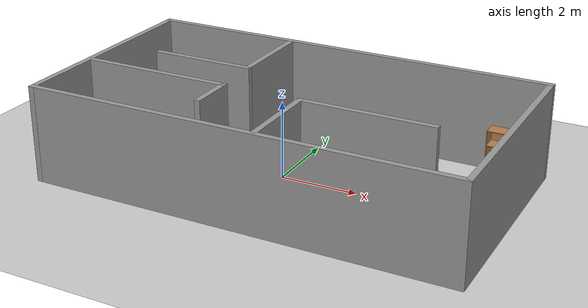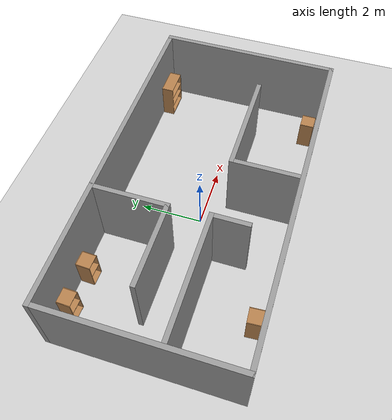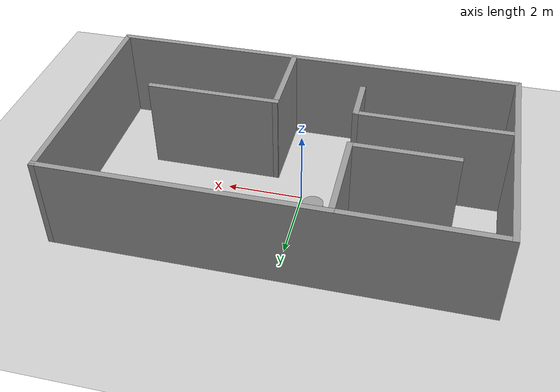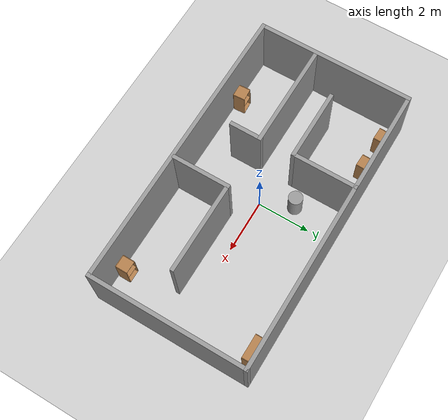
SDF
<sdf version="1.7">
 <world name="default">
  <light name="sun" type="directional">
   <pose>0 0 10 0 -0 0</pose>
   <diffuse>0.8 0.8 0.8 1</diffuse>
   <specular>0.2 0.2 0.2 1</specular>
   <attenuation>
    <range>1000</range>
    <constant>0.9</constant>
    <linear>0.01</linear>
    <quadratic>0.001</quadratic>
   </attenuation>
   <direction>-0.5 0.1 -0.9</direction>
   <spot><inner_angle>0</inner_angle><outer_angle>0</outer_angle><falloff>0</falloff></spot>
  </light>
  <model name="ground_plane">
   <static>1</static>
   <link name="link">
    <collision name="collision">
     <geometry><plane><normal>0 0 1</normal><size>100 100</size></plane></geometry>
     <surface>
      <contact><collide_bitmask>65535</collide_bitmask></contact>
      <friction><ode><mu>100</mu><mu2>50</mu2></ode></friction>
     </surface>
    </collision>
    <visual name="visual">
     <cast_shadows>0</cast_shadows>
     <geometry><plane><normal>0 0 1</normal><size>100 100</size></plane></geometry>
     <material>
      <script><uri>file://media/materials/scripts/gazebo.material</uri><name>Gazebo/Grey</name></script>
     </material>
    </visual>
   </link>
  </model>
  <gravity>0 0 -9.8</gravity>
  <magnetic_field>6e-06 2.3e-05 -4.2e-05</magnetic_field>
  <atmosphere type="adiabatic"/>
  <physics type="ode">
   <max_step_size>0.001</max_step_size>
   <real_time_factor>1</real_time_factor>
   <real_time_update_rate>1000</real_time_update_rate>
  </physics>
  <scene><ambient>0.4 0.4 0.4 1</ambient><background>0.7 0.7 0.7 1</background><shadows>1</shadows></scene>
  <spherical_coordinates>
   <surface_model>EARTH_WGS84</surface_model>
   <latitude_deg>0</latitude_deg>
   <longitude_deg>0</longitude_deg>
   <elevation>0</elevation>
   <heading_deg>0</heading_deg>
  </spherical_coordinates>
  <model name="sudo_room">
   <pose>0.281156 0.007243 0 0 -0 0</pose>
   <link name="Wall_21">
    <collision name="Wall_21_Collision">
     <geometry><box><size>6 0.15 2.5</size></box></geometry>
     <pose>0 0 1.25 0 -0 0</pose>
    </collision>
    <visual name="Wall_21_Visual">
     <pose>0 0 1.25 0 -0 0</pose>
     <geometry><box><size>6 0.15 2.5</size></box></geometry>
     <material>
      <script><uri>file://media/materials/scripts/gazebo.material</uri><name>Gazebo/Grey</name></script>
      <ambient>1 1 1 1</ambient>
     </material>
     <meta><layer>0</layer></meta>
    </visual>
    <pose>5.455 0 0 0 -0 1.5708</pose>
   </link>
   <link name="Wall_22">
    <collision name="Wall_22_Collision">
     <geometry><box><size>11.06 0.15 2.5</size></box></geometry>
     <pose>0 0 1.25 0 -0 0</pose>
    </collision>
    <visual name="Wall_22_Visual">
     <pose>0 0 1.25 0 -0 0</pose>
     <geometry><box><size>11.06 0.15 2.5</size></box></geometry>
     <material>
      <script><uri>file://media/materials/scripts/gazebo.material</uri><name>Gazebo/Grey</name></script>
      <ambient>1 1 1 1</ambient>
     </material>
     <meta><layer>0</layer></meta>
    </visual>
    <pose>0 2.925 0 0 -0 3.14159</pose>
   </link>
   <link name="Wall_23">
    <collision name="Wall_23_Collision">
     <geometry><box><size>6 0.15 2.5</size></box></geometry>
     <pose>0 0 1.25 0 -0 0</pose>
    </collision>
    <visual name="Wall_23_Visual">
     <pose>0 0 1.25 0 -0 0</pose>
     <geometry><box><size>6 0.15 2.5</size></box></geometry>
     <material>
      <script><uri>file://media/materials/scripts/gazebo.material</uri><name>Gazebo/Grey</name></script>
      <ambient>1 1 1 1</ambient>
     </material>
     <meta><layer>0</layer></meta>
    </visual>
    <pose>-5.455 0 0 0 -0 -1.5708</pose>
   </link>
   <link name="Wall_25">
    <collision name="Wall_25_Collision">
     <geometry><box><size>2.5 0.15 2.5</size></box></geometry>
     <pose>0 0 1.25 0 -0 0</pose>
    </collision>
    <visual name="Wall_25_Visual">
     <pose>0 0 1.25 0 -0 0</pose>
     <geometry><box><size>2.5 0.15 2.5</size></box></geometry>
     <material>
      <script><uri>file://media/materials/scripts/gazebo.material</uri><name>Gazebo/Grey</name></script>
      <ambient>1 1 1 1</ambient>
     </material>
     <meta><layer>0</layer></meta>
    </visual>
    <pose>-1.56393 1.73565 0 0 -0 -1.5708</pose>
   </link>
   <link name="Wall_26">
    <collision name="Wall_26_Collision">
     <geometry><box><size>2.75 0.15 2.5</size></box></geometry>
     <pose>0 0 1.25 0 -0 0</pose>
    </collision>
    <visual name="Wall_26_Visual">
     <pose>0 0 1.25 0 -0 0</pose>
     <geometry><box><size>2.75 0.15 2.5</size></box></geometry>
     <material>
      <script><uri>file://media/materials/scripts/gazebo.material</uri><name>Gazebo/Grey</name></script>
      <ambient>1 1 1 1</ambient>
     </material>
     <meta><layer>0</layer></meta>
    </visual>
    <pose>-2.86393 0.560646 0 0 -0 3.14159</pose>
   </link>
   <link name="Wall_29">
    <collision name="Wall_29_Collision">
     <geometry><box><size>4 0.15 2.5</size></box></geometry>
     <pose>0 0 1.25 0 -0 0</pose>
    </collision>
    <visual name="Wall_29_Visual">
     <pose>0 0 1.25 0 -0 0</pose>
     <geometry><box><size>4 0.15 2.5</size></box></geometry>
     <material>
      <script><uri>file://media/materials/scripts/gazebo.material</uri><name>Gazebo/Grey</name></script>
      <ambient>1 1 1 1</ambient>
     </material>
     <meta><layer>0</layer></meta>
    </visual>
    <pose>-3.42296 -0.722821 0 0 -0 0</pose>
   </link>
   <link name="Wall_3">
    <collision name="Wall_3_Collision">
     <geometry><box><size>11.06 0.15 2.5</size></box></geometry>
     <pose>0 0 1.25 0 -0 0</pose>
    </collision>
    <visual name="Wall_3_Visual">
     <pose>0 0 1.25 0 -0 0</pose>
     <geometry><box><size>11.06 0.15 2.5</size></box></geometry>
     <material>
      <script><uri>file://media/materials/scripts/gazebo.material</uri><name>Gazebo/Grey</name></script>
      <ambient>1 1 1 1</ambient>
     </material>
     <meta><layer>0</layer></meta>
    </visual>
    <pose>0 -2.925 0 0 -0 3.14159</pose>
   </link>
   <link name="Wall_30">
    <collision name="Wall_30_Collision">
     <geometry><box><size>1.25 0.15 2.5</size></box></geometry>
     <pose>0 0 1.25 0 -0 0</pose>
    </collision>
    <visual name="Wall_30_Visual">
     <pose>0 0 1.25 0 -0 0</pose>
     <geometry><box><size>1.25 0.15 2.5</size></box></geometry>
     <material>
      <script><uri>file://media/materials/scripts/gazebo.material</uri><name>Gazebo/Grey</name></script>
      <ambient>1 1 1 1</ambient>
     </material>
     <meta><layer>0</layer></meta>
    </visual>
    <pose>-1.49796 -1.27282 0 0 -0 -1.5708</pose>
   </link>
   <link name="Wall_32">
    <collision name="Wall_32_Collision">
     <geometry><box><size>2.25 0.15 2.5</size></box></geometry>
     <pose>0 0 1.25 0 -0 0</pose>
    </collision>
    <visual name="Wall_32_Visual">
     <pose>0 0 1.25 0 -0 0</pose>
     <geometry><box><size>2.25 0.15 2.5</size></box></geometry>
     <material>
      <script><uri>file://media/materials/scripts/gazebo.material</uri><name>Gazebo/Grey</name></script>
      <ambient>1 1 1 1</ambient>
     </material>
     <meta><layer>0</layer></meta>
    </visual>
    <pose>0.570231 -1.78882 0 0 -0 1.5708</pose>
   </link>
   <link name="Wall_33">
    <collision name="Wall_33_Collision">
     <geometry><box><size>3.5 0.15 2.5</size></box></geometry>
     <pose>0 0 1.25 0 -0 0</pose>
    </collision>
    <visual name="Wall_33_Visual">
     <pose>0 0 1.25 0 -0 0</pose>
     <geometry><box><size>3.5 0.15 2.5</size></box></geometry>
     <material>
      <script><uri>file://media/materials/scripts/gazebo.material</uri><name>Gazebo/Grey</name></script>
      <ambient>1 1 1 1</ambient>
     </material>
     <meta><layer>0</layer></meta>
    </visual>
    <pose>2.24523 -0.738821 0 0 -0 0</pose>
   </link>
   <static>1</static>
  </model>
  <model name="cabinet">
   <static>1</static>
   <link name="cabinet_bottom_plate">
    <inertial>
     <pose>0 0 -1 0 -0 0</pose>
     <inertia><ixx>2.05</ixx><ixy>0</ixy><ixz>0</ixz><iyy>2.05</iyy><iyz>0</iyz><izz>2.05</izz></inertia>
     <mass>25</mass>
    </inertial>
    <collision name="cabinet_bottom_plate_geom">
     <pose>0 0 0.01 0 -0 0</pose>
     <geometry><box><size>0.45 0.45 0.02</size></box></geometry>
    </collision>
    <visual name="cabinet_bottom_plate_geom_visual">
     <pose>0 0 0.01 0 -0 0</pose>
     <geometry><box><size>0.45 0.45 0.02</size></box></geometry>
     <material>
      <script><uri>file://media/materials/scripts/gazebo.material</uri><name>Gazebo/Wood</name></script>
     </material>
    </visual>
    <collision name="cabinet_bottom_plate_geom_cabinet_back_plate">
     <pose>0.235 0 0.51 0 -0 0</pose>
     <geometry><box><size>0.02 0.45 1.02</size></box></geometry>
    </collision>
    <visual name="cabinet_bottom_plate_geom_cabinet_back_plate_visual">
     <pose>0.235 0 0.51 0 -0 0</pose>
     <geometry><box><size>0.02 0.45 1.02</size></box></geometry>
     <material>
      <script><uri>file://media/materials/scripts/gazebo.material</uri><name>Gazebo/Wood</name></script>
     </material>
    </visual>
    <collision name="cabinet_bottom_plate_geom_cabinet_left_plate">
     <pose>0 0.235 0.51 0 -0 0</pose>
     <geometry><box><size>0.45 0.02 1.02</size></box></geometry>
    </collision>
    <visual name="cabinet_bottom_plate_geom_cabinet_left_plate_visual">
     <pose>0 0.235 0.51 0 -0 0</pose>
     <geometry><box><size>0.45 0.02 1.02</size></box></geometry>
     <material>
      <script><uri>file://media/materials/scripts/gazebo.material</uri><name>Gazebo/Wood</name></script>
     </material>
    </visual>
    <collision name="cabinet_bottom_plate_geom_cabinet_middle_plate">
     <pose>0 0 0.51 0 -0 0</pose>
     <geometry><box><size>0.45 0.45 0.02</size></box></geometry>
    </collision>
    <visual name="cabinet_bottom_plate_geom_cabinet_middle_plate_visual">
     <pose>0 0 0.51 0 -0 0</pose>
     <geometry><box><size>0.45 0.45 0.02</size></box></geometry>
     <material>
      <script><uri>file://media/materials/scripts/gazebo.material</uri><name>Gazebo/Wood</name></script>
     </material>
    </visual>
    <collision name="cabinet_bottom_plate_geom_cabinet_right_plate">
     <pose>0 -0.235 0.51 0 -0 0</pose>
     <geometry><box><size>0.45 0.02 1.02</size></box></geometry>
    </collision>
    <visual name="cabinet_bottom_plate_geom_cabinet_right_plate_visual">
     <pose>0 -0.235 0.51 0 -0 0</pose>
     <geometry><box><size>0.45 0.02 1.02</size></box></geometry>
     <material>
      <script><uri>file://media/materials/scripts/gazebo.material</uri><name>Gazebo/Wood</name></script>
     </material>
    </visual>
    <collision name="cabinet_bottom_plate_geom_cabinet_top_plate">
     <pose>0 0 1.01 0 -0 0</pose>
     <geometry><box><size>0.45 0.45 0.02</size></box></geometry>
    </collision>
    <visual name="cabinet_bottom_plate_geom_cabinet_top_plate_visual">
     <pose>0 0 1.01 0 -0 0</pose>
     <geometry><box><size>0.45 0.45 0.02</size></box></geometry>
     <material>
      <script><uri>file://media/materials/scripts/gazebo.material</uri><name>Gazebo/Wood</name></script>
     </material>
    </visual>
   </link>
   <pose>4.54857 -2.57286 0 0 0 -1.57115</pose>
  </model>
  <model name="cabinet_0">
   <static>1</static>
   <link name="cabinet_bottom_plate">
    <inertial>
     <pose>0 0 -1 0 -0 0</pose>
     <inertia><ixx>2.05</ixx><ixy>0</ixy><ixz>0</ixz><iyy>2.05</iyy><iyz>0</iyz><izz>2.05</izz></inertia>
     <mass>25</mass>
    </inertial>
    <collision name="cabinet_bottom_plate_geom">
     <pose>0 0 0.01 0 -0 0</pose>
     <geometry><box><size>0.45 0.45 0.02</size></box></geometry>
    </collision>
    <visual name="cabinet_bottom_plate_geom_visual">
     <pose>0 0 0.01 0 -0 0</pose>
     <geometry><box><size>0.45 0.45 0.02</size></box></geometry>
     <material>
      <script><uri>file://media/materials/scripts/gazebo.material</uri><name>Gazebo/Wood</name></script>
     </material>
    </visual>
    <collision name="cabinet_bottom_plate_geom_cabinet_back_plate">
     <pose>0.235 0 0.51 0 -0 0</pose>
     <geometry><box><size>0.02 0.45 1.02</size></box></geometry>
    </collision>
    <visual name="cabinet_bottom_plate_geom_cabinet_back_plate_visual">
     <pose>0.235 0 0.51 0 -0 0</pose>
     <geometry><box><size>0.02 0.45 1.02</size></box></geometry>
     <material>
      <script><uri>file://media/materials/scripts/gazebo.material</uri><name>Gazebo/Wood</name></script>
     </material>
    </visual>
    <collision name="cabinet_bottom_plate_geom_cabinet_left_plate">
     <pose>0 0.235 0.51 0 -0 0</pose>
     <geometry><box><size>0.45 0.02 1.02</size></box></geometry>
    </collision>
    <visual name="cabinet_bottom_plate_geom_cabinet_left_plate_visual">
     <pose>0 0.235 0.51 0 -0 0</pose>
     <geometry><box><size>0.45 0.02 1.02</size></box></geometry>
     <material>
      <script><uri>file://media/materials/scripts/gazebo.material</uri><name>Gazebo/Wood</name></script>
     </material>
    </visual>
    <collision name="cabinet_bottom_plate_geom_cabinet_middle_plate">
     <pose>0 0 0.51 0 -0 0</pose>
     <geometry><box><size>0.45 0.45 0.02</size></box></geometry>
    </collision>
    <visual name="cabinet_bottom_plate_geom_cabinet_middle_plate_visual">
     <pose>0 0 0.51 0 -0 0</pose>
     <geometry><box><size>0.45 0.45 0.02</size></box></geometry>
     <material>
      <script><uri>file://media/materials/scripts/gazebo.material</uri><name>Gazebo/Wood</name></script>
     </material>
    </visual>
    <collision name="cabinet_bottom_plate_geom_cabinet_right_plate">
     <pose>0 -0.235 0.51 0 -0 0</pose>
     <geometry><box><size>0.45 0.02 1.02</size></box></geometry>
    </collision>
    <visual name="cabinet_bottom_plate_geom_cabinet_right_plate_visual">
     <pose>0 -0.235 0.51 0 -0 0</pose>
     <geometry><box><size>0.45 0.02 1.02</size></box></geometry>
     <material>
      <script><uri>file://media/materials/scripts/gazebo.material</uri><name>Gazebo/Wood</name></script>
     </material>
    </visual>
    <collision name="cabinet_bottom_plate_geom_cabinet_top_plate">
     <pose>0 0 1.01 0 -0 0</pose>
     <geometry><box><size>0.45 0.45 0.02</size></box></geometry>
    </collision>
    <visual name="cabinet_bottom_plate_geom_cabinet_top_plate_visual">
     <pose>0 0 1.01 0 -0 0</pose>
     <geometry><box><size>0.45 0.45 0.02</size></box></geometry>
     <material>
      <script><uri>file://media/materials/scripts/gazebo.material</uri><name>Gazebo/Wood</name></script>
     </material>
    </visual>
   </link>
   <pose>-3.13922 -2.61684 0 0 0 -1.50598</pose>
  </model>
  <model name="cabinet_1">
   <static>1</static>
   <link name="cabinet_bottom_plate">
    <inertial>
     <pose>0 0 -1 0 -0 0</pose>
     <inertia><ixx>2.05</ixx><ixy>0</ixy><ixz>0</ixz><iyy>2.05</iyy><iyz>0</iyz><izz>2.05</izz></inertia>
     <mass>25</mass>
    </inertial>
    <collision name="cabinet_bottom_plate_geom">
     <pose>0 0 0.01 0 -0 0</pose>
     <geometry><box><size>0.45 0.45 0.02</size></box></geometry>
    </collision>
    <visual name="cabinet_bottom_plate_geom_visual">
     <pose>0 0 0.01 0 -0 0</pose>
     <geometry><box><size>0.45 0.45 0.02</size></box></geometry>
     <material>
      <script><uri>file://media/materials/scripts/gazebo.material</uri><name>Gazebo/Wood</name></script>
     </material>
    </visual>
    <collision name="cabinet_bottom_plate_geom_cabinet_back_plate">
     <pose>0.235 0 0.51 0 -0 0</pose>
     <geometry><box><size>0.02 0.45 1.02</size></box></geometry>
    </collision>
    <visual name="cabinet_bottom_plate_geom_cabinet_back_plate_visual">
     <pose>0.235 0 0.51 0 -0 0</pose>
     <geometry><box><size>0.02 0.45 1.02</size></box></geometry>
     <material>
      <script><uri>file://media/materials/scripts/gazebo.material</uri><name>Gazebo/Wood</name></script>
     </material>
    </visual>
    <collision name="cabinet_bottom_plate_geom_cabinet_left_plate">
     <pose>0 0.235 0.51 0 -0 0</pose>
     <geometry><box><size>0.45 0.02 1.02</size></box></geometry>
    </collision>
    <visual name="cabinet_bottom_plate_geom_cabinet_left_plate_visual">
     <pose>0 0.235 0.51 0 -0 0</pose>
     <geometry><box><size>0.45 0.02 1.02</size></box></geometry>
     <material>
      <script><uri>file://media/materials/scripts/gazebo.material</uri><name>Gazebo/Wood</name></script>
     </material>
    </visual>
    <collision name="cabinet_bottom_plate_geom_cabinet_middle_plate">
     <pose>0 0 0.51 0 -0 0</pose>
     <geometry><box><size>0.45 0.45 0.02</size></box></geometry>
    </collision>
    <visual name="cabinet_bottom_plate_geom_cabinet_middle_plate_visual">
     <pose>0 0 0.51 0 -0 0</pose>
     <geometry><box><size>0.45 0.45 0.02</size></box></geometry>
     <material>
      <script><uri>file://media/materials/scripts/gazebo.material</uri><name>Gazebo/Wood</name></script>
     </material>
    </visual>
    <collision name="cabinet_bottom_plate_geom_cabinet_right_plate">
     <pose>0 -0.235 0.51 0 -0 0</pose>
     <geometry><box><size>0.45 0.02 1.02</size></box></geometry>
    </collision>
    <visual name="cabinet_bottom_plate_geom_cabinet_right_plate_visual">
     <pose>0 -0.235 0.51 0 -0 0</pose>
     <geometry><box><size>0.45 0.02 1.02</size></box></geometry>
     <material>
      <script><uri>file://media/materials/scripts/gazebo.material</uri><name>Gazebo/Wood</name></script>
     </material>
    </visual>
    <collision name="cabinet_bottom_plate_geom_cabinet_top_plate">
     <pose>0 0 1.01 0 -0 0</pose>
     <geometry><box><size>0.45 0.45 0.02</size></box></geometry>
    </collision>
    <visual name="cabinet_bottom_plate_geom_cabinet_top_plate_visual">
     <pose>0 0 1.01 0 -0 0</pose>
     <geometry><box><size>0.45 0.45 0.02</size></box></geometry>
     <material>
      <script><uri>file://media/materials/scripts/gazebo.material</uri><name>Gazebo/Wood</name></script>
     </material>
    </visual>
   </link>
   <pose>-2.92957 2.60605 0 0 -0 1.53621</pose>
  </model>
  <model name="cabinet_2">
   <static>1</static>
   <link name="cabinet_bottom_plate">
    <inertial>
     <pose>0 0 -1 0 -0 0</pose>
     <inertia><ixx>2.05</ixx><ixy>0</ixy><ixz>0</ixz><iyy>2.05</iyy><iyz>0</iyz><izz>2.05</izz></inertia>
     <mass>25</mass>
    </inertial>
    <collision name="cabinet_bottom_plate_geom">
     <pose>0 0 0.01 0 -0 0</pose>
     <geometry><box><size>0.45 0.45 0.02</size></box></geometry>
    </collision>
    <visual name="cabinet_bottom_plate_geom_visual">
     <pose>0 0 0.01 0 -0 0</pose>
     <geometry><box><size>0.45 0.45 0.02</size></box></geometry>
     <material>
      <script><uri>file://media/materials/scripts/gazebo.material</uri><name>Gazebo/Wood</name></script>
     </material>
    </visual>
    <collision name="cabinet_bottom_plate_geom_cabinet_back_plate">
     <pose>0.235 0 0.51 0 -0 0</pose>
     <geometry><box><size>0.02 0.45 1.02</size></box></geometry>
    </collision>
    <visual name="cabinet_bottom_plate_geom_cabinet_back_plate_visual">
     <pose>0.235 0 0.51 0 -0 0</pose>
     <geometry><box><size>0.02 0.45 1.02</size></box></geometry>
     <material>
      <script><uri>file://media/materials/scripts/gazebo.material</uri><name>Gazebo/Wood</name></script>
     </material>
    </visual>
    <collision name="cabinet_bottom_plate_geom_cabinet_left_plate">
     <pose>0 0.235 0.51 0 -0 0</pose>
     <geometry><box><size>0.45 0.02 1.02</size></box></geometry>
    </collision>
    <visual name="cabinet_bottom_plate_geom_cabinet_left_plate_visual">
     <pose>0 0.235 0.51 0 -0 0</pose>
     <geometry><box><size>0.45 0.02 1.02</size></box></geometry>
     <material>
      <script><uri>file://media/materials/scripts/gazebo.material</uri><name>Gazebo/Wood</name></script>
     </material>
    </visual>
    <collision name="cabinet_bottom_plate_geom_cabinet_middle_plate">
     <pose>0 0 0.51 0 -0 0</pose>
     <geometry><box><size>0.45 0.45 0.02</size></box></geometry>
    </collision>
    <visual name="cabinet_bottom_plate_geom_cabinet_middle_plate_visual">
     <pose>0 0 0.51 0 -0 0</pose>
     <geometry><box><size>0.45 0.45 0.02</size></box></geometry>
     <material>
      <script><uri>file://media/materials/scripts/gazebo.material</uri><name>Gazebo/Wood</name></script>
     </material>
    </visual>
    <collision name="cabinet_bottom_plate_geom_cabinet_right_plate">
     <pose>0 -0.235 0.51 0 -0 0</pose>
     <geometry><box><size>0.45 0.02 1.02</size></box></geometry>
    </collision>
    <visual name="cabinet_bottom_plate_geom_cabinet_right_plate_visual">
     <pose>0 -0.235 0.51 0 -0 0</pose>
     <geometry><box><size>0.45 0.02 1.02</size></box></geometry>
     <material>
      <script><uri>file://media/materials/scripts/gazebo.material</uri><name>Gazebo/Wood</name></script>
     </material>
    </visual>
    <collision name="cabinet_bottom_plate_geom_cabinet_top_plate">
     <pose>0 0 1.01 0 -0 0</pose>
     <geometry><box><size>0.45 0.45 0.02</size></box></geometry>
    </collision>
    <visual name="cabinet_bottom_plate_geom_cabinet_top_plate_visual">
     <pose>0 0 1.01 0 -0 0</pose>
     <geometry><box><size>0.45 0.45 0.02</size></box></geometry>
     <material>
      <script><uri>file://media/materials/scripts/gazebo.material</uri><name>Gazebo/Wood</name></script>
     </material>
    </visual>
   </link>
   <pose>-4.17739 2.64465 0 0 -0 1.53962</pose>
  </model>
  <model name="bookshelf">
   <static>1</static>
   <link name="link">
    <inertial><mass>1</mass></inertial>
    <collision name="back">
     <pose>0 0.005 0.6 0 -0 0</pose>
     <geometry><box><size>0.9 0.01 1.2</size></box></geometry>
    </collision>
    <visual name="visual1">
     <pose>0 0.005 0.6 0 -0 0</pose>
     <geometry><box><size>0.9 0.01 1.2</size></box></geometry>
     <material>
      <script><uri>file://media/materials/scripts/gazebo.material</uri><name>Gazebo/Wood</name></script>
     </material>
    </visual>
    <collision name="left_side">
     <pose>0.45 -0.195 0.6 0 -0 0</pose>
     <geometry><box><size>0.02 0.4 1.2</size></box></geometry>
    </collision>
    <visual name="visual2">
     <pose>0.45 -0.195 0.6 0 -0 0</pose>
     <geometry><box><size>0.02 0.4 1.2</size></box></geometry>
     <material>
      <script><uri>file://media/materials/scripts/gazebo.material</uri><name>Gazebo/Wood</name></script>
     </material>
    </visual>
    <collision name="right_side">
     <pose>-0.45 -0.195 0.6 0 -0 0</pose>
     <geometry><box><size>0.02 0.4 1.2</size></box></geometry>
    </collision>
    <visual name="visual3">
     <pose>-0.45 -0.195 0.6 0 -0 0</pose>
     <geometry><box><size>0.02 0.4 1.2</size></box></geometry>
     <material>
      <script><uri>file://media/materials/scripts/gazebo.material</uri><name>Gazebo/Wood</name></script>
     </material>
    </visual>
    <collision name="bottom">
     <pose>0 -0.195 0.03 0 -0 0</pose>
     <geometry><box><size>0.88 0.4 0.06</size></box></geometry>
    </collision>
    <visual name="visual4">
     <pose>0 -0.195 0.03 0 -0 0</pose>
     <geometry><box><size>0.88 0.4 0.06</size></box></geometry>
     <material>
      <script><uri>file://media/materials/scripts/gazebo.material</uri><name>Gazebo/Wood</name></script>
     </material>
    </visual>
    <collision name="top">
     <pose>0 -0.195 1.19 0 -0 0</pose>
     <geometry><box><size>0.88 0.4 0.02</size></box></geometry>
    </collision>
    <visual name="visual5">
     <pose>0 -0.195 1.19 0 -0 0</pose>
     <geometry><box><size>0.88 0.4 0.02</size></box></geometry>
     <material>
      <script><uri>file://media/materials/scripts/gazebo.material</uri><name>Gazebo/Wood</name></script>
     </material>
    </visual>
    <collision name="low_shelf">
     <pose>0 -0.195 0.43 0 -0 0</pose>
     <geometry><box><size>0.88 0.4 0.02</size></box></geometry>
    </collision>
    <visual name="visual6">
     <pose>0 -0.195 0.43 0 -0 0</pose>
     <geometry><box><size>0.88 0.4 0.02</size></box></geometry>
     <material>
      <script><uri>file://media/materials/scripts/gazebo.material</uri><name>Gazebo/Wood</name></script>
     </material>
    </visual>
    <collision name="high_shelf">
     <pose>0 -0.195 0.8 0 -0 0</pose>
     <geometry><box><size>0.88 0.4 0.02</size></box></geometry>
    </collision>
    <visual name="visual7">
     <pose>0 -0.195 0.8 0 -0 0</pose>
     <geometry><box><size>0.88 0.4 0.02</size></box></geometry>
     <material>
      <script><uri>file://media/materials/scripts/gazebo.material</uri><name>Gazebo/Wood</name></script>
     </material>
    </visual>
   </link>
   <pose>4.83335 2.84593 0 0 -0 0</pose>
  </model>
  <model name="unit_cylinder">
   <pose>-0.532938 1.14953 0.471598 -1e-06 1e-06 7.9e-05</pose>
   <link name="link">
    <inertial>
     <mass>1</mass>
     <inertia><ixx>0.145833</ixx><ixy>0</ixy><ixz>0</ixz><iyy>0.145833</iyy><iyz>0</iyz><izz>0.125</izz></inertia>
    </inertial>
    <collision name="collision">
     <geometry><cylinder><radius>0.265324</radius><length>0.943199</length></cylinder></geometry>
    </collision>
    <visual name="visual">
     <geometry><cylinder><radius>0.265324</radius><length>0.943199</length></cylinder></geometry>
     <material>
      <script><name>Gazebo/Grey</name><uri>file://media/materials/scripts/gazebo.material</uri></script>
     </material>
    </visual>
   </link>
  </model>
 </world>
</sdf>
